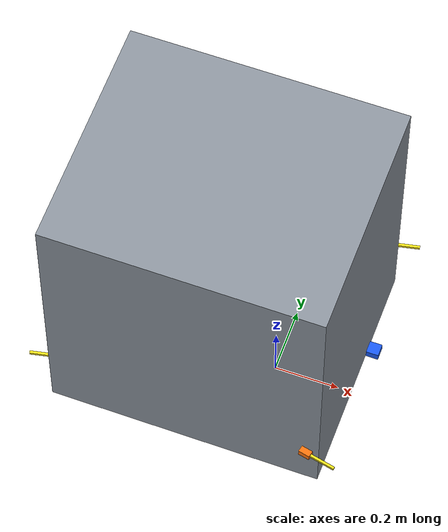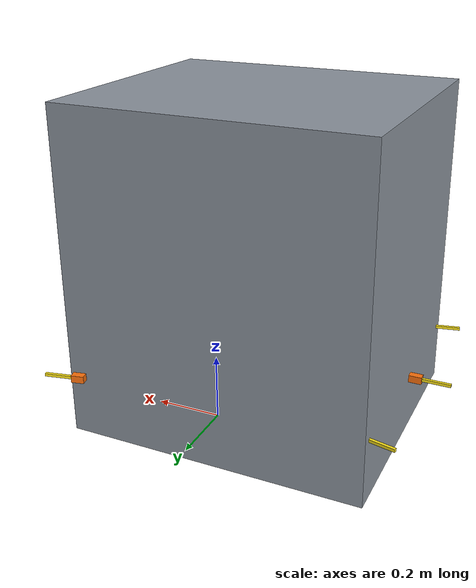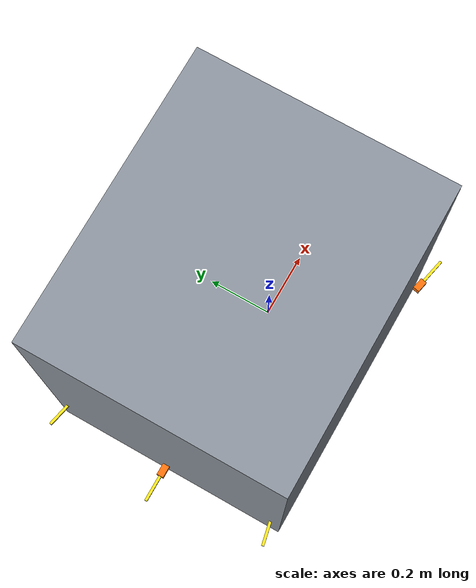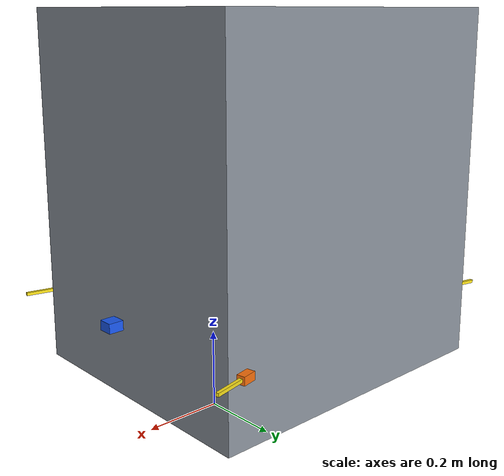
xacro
<?xml version="1.0"?>
<robot name="hospital_delivery_robot" xmlns:xacro="http://www.ros.org/wiki/xacro">
  <xacro:property name="body_length" value="0.83"/>
  <xacro:property name="body_width" value="0.71"/>
  <xacro:property name="body_height" value="0.91"/>

  <xacro:property name="wheel_separation" value="0.35"/>
  <xacro:property name="drive_wheel_diameter" value="0.125"/>
  <xacro:property name="drive_wheel_radius" value="0.0625"/>
  <xacro:property name="drive_wheel_thickness" value="0.04"/>
  <xacro:property name="body_mount_shift_x" value="-0.16"/>

  <xacro:property name="lidar_size" value="0.037 0.037 0.024"/>
  <xacro:property name="imu_size" value="0.045 0.035 0.018"/>
  <xacro:property name="tof_size" value="0.035 0.02 0.02"/>
  <xacro:property name="tof_direction_size" value="0.08 0.008 0.008"/>

  <xacro:property name="lidar_x" value="0.30"/>
  <xacro:property name="lidar_y" value="0.0"/>
  <xacro:property name="lidar_z" value="0.175"/>

  <xacro:property name="imu_x" value="0.0"/>
  <xacro:property name="imu_y" value="0.0"/>
  <xacro:property name="imu_z" value="0.015"/>

  <xacro:property name="tof_front_left_x" value="0.22"/>
  <xacro:property name="tof_front_left_y" value="0.37"/>
  <xacro:property name="tof_front_left_z" value="0.15"/>
  <xacro:property name="tof_front_left_yaw" value="0.209440"/>

  <xacro:property name="tof_front_right_x" value="0.22"/>
  <xacro:property name="tof_front_right_y" value="-0.37"/>
  <xacro:property name="tof_front_right_z" value="0.15"/>
  <xacro:property name="tof_front_right_yaw" value="-0.209440"/>

  <xacro:property name="tof_rear_left_x" value="-0.55"/>
  <xacro:property name="tof_rear_left_y" value="0.32"/>
  <xacro:property name="tof_rear_left_z" value="0.15"/>
  <xacro:property name="tof_rear_left_yaw" value="2.932153"/>

  <xacro:property name="tof_rear_right_x" value="-0.55"/>
  <xacro:property name="tof_rear_right_y" value="-0.32"/>
  <xacro:property name="tof_rear_right_z" value="0.15"/>
  <xacro:property name="tof_rear_right_yaw" value="-2.932153"/>

  <xacro:property name="tof_rear_center_x" value="-0.60"/>
  <xacro:property name="tof_rear_center_y" value="0.0"/>
  <xacro:property name="tof_rear_center_z" value="0.15"/>
  <xacro:property name="tof_rear_center_yaw" value="3.141593"/>

  <material name="body_gray">
    <color rgba="0.55 0.58 0.62 1.0"/>
  </material>
  <material name="wheel_black">
    <color rgba="0.04 0.04 0.04 1.0"/>
  </material>
  <material name="lidar_blue">
    <color rgba="0.1 0.35 0.95 1.0"/>
  </material>
  <material name="imu_green">
    <color rgba="0.0 0.65 0.25 1.0"/>
  </material>
  <material name="tof_orange">
    <color rgba="1.0 0.45 0.05 1.0"/>
  </material>
  <material name="tof_direction_yellow">
    <color rgba="1.0 0.9 0.1 1.0"/>
  </material>

  <link name="base_footprint"/>

  <joint name="base_footprint_to_base_link" type="fixed">
    <parent link="base_footprint"/>
    <child link="base_link"/>
    <origin xyz="0 0 ${drive_wheel_diameter}" rpy="0 0 0"/>
  </joint>

  <link name="base_link">
    <!-- TODO: Replace body primitive with Fusion 360 STL or DAE mesh after export. -->
    <visual>
      <origin xyz="${body_mount_shift_x} 0 0.43" rpy="0 0 0"/>
      <geometry>
        <box size="${body_length} ${body_width} ${body_height}"/>
      </geometry>
      <material name="body_gray"/>
    </visual>
    <collision>
      <origin xyz="${body_mount_shift_x} 0 0.43" rpy="0 0 0"/>
      <geometry>
        <box size="${body_length} ${body_width} ${body_height}"/>
      </geometry>
    </collision>
    <inertial>
      <origin xyz="${body_mount_shift_x} 0 0.43" rpy="0 0 0"/>
      <mass value="15.0"/>
      <inertia ixx="0.5" ixy="0.0" ixz="0.0" iyy="0.8" iyz="0.0" izz="1.0"/>
    </inertial>
  </link>

  <xacro:macro name="drive_wheel" params="side y">
    <link name="${side}_wheel_link">
      <visual>
        <origin xyz="0 0 0" rpy="${pi / 2.0} 0 0"/>
        <geometry>
          <cylinder radius="${drive_wheel_radius}" length="${drive_wheel_thickness}"/>
        </geometry>
        <material name="wheel_black"/>
      </visual>
      <collision>
        <origin xyz="0 0 0" rpy="${pi / 2.0} 0 0"/>
        <geometry>
          <cylinder radius="${drive_wheel_radius}" length="${drive_wheel_thickness}"/>
        </geometry>
      </collision>
      <inertial>
        <origin xyz="0 0 0" rpy="0 0 0"/>
        <mass value="1.0"/>
        <inertia ixx="0.01" ixy="0.0" ixz="0.0" iyy="0.01" iyz="0.0" izz="0.01"/>
      </inertial>
    </link>

    <joint name="${side}_wheel_joint" type="continuous">
      <parent link="base_link"/>
      <child link="${side}_wheel_link"/>
      <origin xyz="0 ${y} ${drive_wheel_radius - drive_wheel_diameter}" rpy="0 0 0"/>
      <axis xyz="0 1 0"/>
    </joint>
  </xacro:macro>

  <xacro:drive_wheel side="left" y="${wheel_separation / 2.0}"/>
  <xacro:drive_wheel side="right" y="${-wheel_separation / 2.0}"/>

  <!-- TODO: Add caster link and joint after caster wheel position is finalized. -->

  <link name="laser_frame">
    <visual>
      <geometry>
        <box size="${lidar_size}"/>
      </geometry>
      <material name="lidar_blue"/>
    </visual>
    <collision>
      <geometry>
        <box size="${lidar_size}"/>
      </geometry>
    </collision>
  </link>

  <joint name="lidar_joint" type="fixed">
    <parent link="base_link"/>
    <child link="laser_frame"/>
    <origin xyz="${lidar_x} ${lidar_y} ${lidar_z}" rpy="0 0 ${pi}"/>
  </joint>

  <link name="imu_link">
    <visual>
      <geometry>
        <box size="${imu_size}"/>
      </geometry>
      <material name="imu_green"/>
    </visual>
    <collision>
      <geometry>
        <box size="${imu_size}"/>
      </geometry>
    </collision>
  </link>

  <joint name="imu_joint" type="fixed">
    <parent link="base_link"/>
    <child link="imu_link"/>
    <origin xyz="${imu_x} ${imu_y} ${imu_z}" rpy="0 0 0"/>
  </joint>

  <xacro:macro name="tof_sensor" params="name x y z yaw">
    <link name="${name}">
      <visual>
        <geometry>
          <box size="${tof_size}"/>
        </geometry>
        <material name="tof_orange"/>
      </visual>
      <visual>
        <origin xyz="0.055 0 0" rpy="0 0 0"/>
        <geometry>
          <box size="${tof_direction_size}"/>
        </geometry>
        <material name="tof_direction_yellow"/>
      </visual>
      <collision>
        <geometry>
          <box size="${tof_size}"/>
        </geometry>
      </collision>
    </link>

    <joint name="${name}_joint" type="fixed">
      <parent link="base_link"/>
      <child link="${name}"/>
      <origin xyz="${x} ${y} ${z}" rpy="0 0 ${yaw}"/>
    </joint>
  </xacro:macro>

  <xacro:tof_sensor
    name="tof_front_left_link"
    x="${tof_front_left_x}"
    y="${tof_front_left_y}"
    z="${tof_front_left_z}"
    yaw="${tof_front_left_yaw}"/>
  <xacro:tof_sensor
    name="tof_front_right_link"
    x="${tof_front_right_x}"
    y="${tof_front_right_y}"
    z="${tof_front_right_z}"
    yaw="${tof_front_right_yaw}"/>
  <xacro:tof_sensor
    name="tof_rear_left_link"
    x="${tof_rear_left_x}"
    y="${tof_rear_left_y}"
    z="${tof_rear_left_z}"
    yaw="${tof_rear_left_yaw}"/>
  <xacro:tof_sensor
    name="tof_rear_right_link"
    x="${tof_rear_right_x}"
    y="${tof_rear_right_y}"
    z="${tof_rear_right_z}"
    yaw="${tof_rear_right_yaw}"/>
  <xacro:tof_sensor
    name="tof_rear_center_link"
    x="${tof_rear_center_x}"
    y="${tof_rear_center_y}"
    z="${tof_rear_center_z}"
    yaw="${tof_rear_center_yaw}"/>
</robot>
